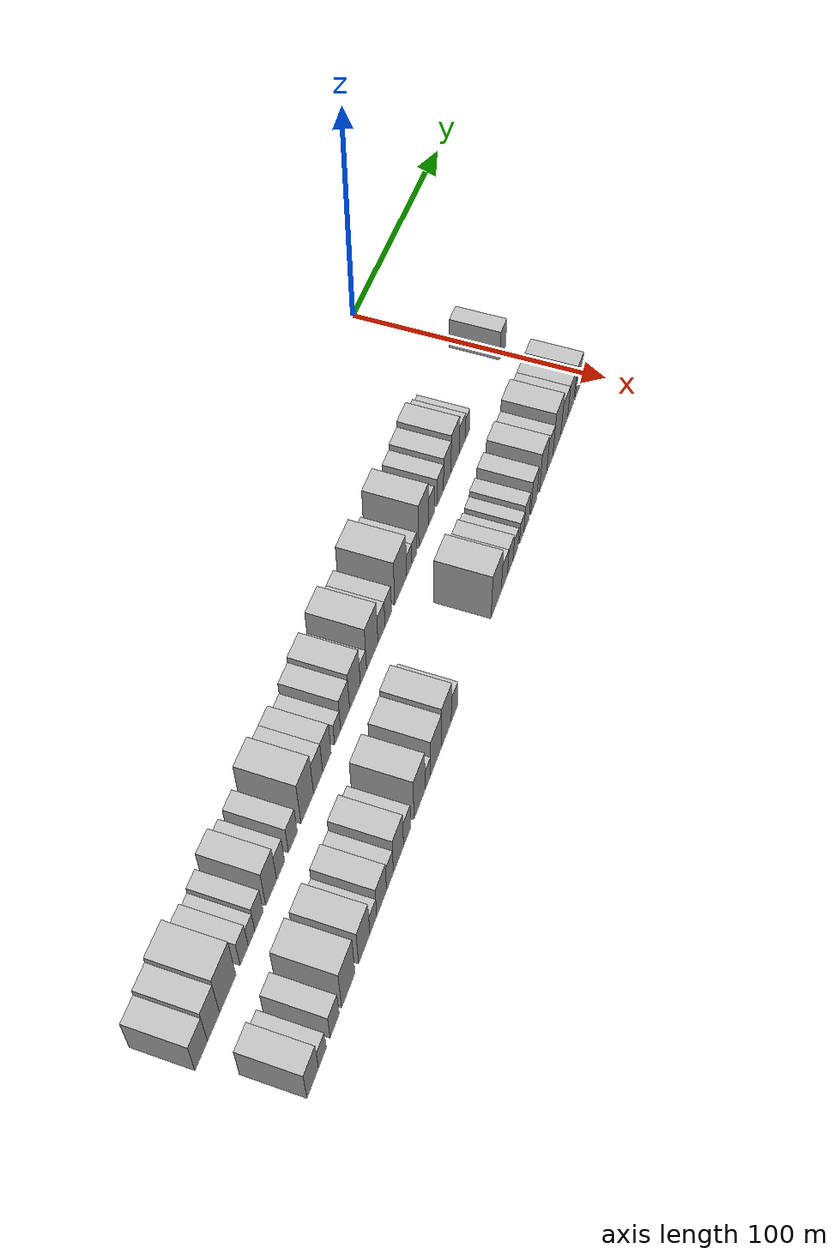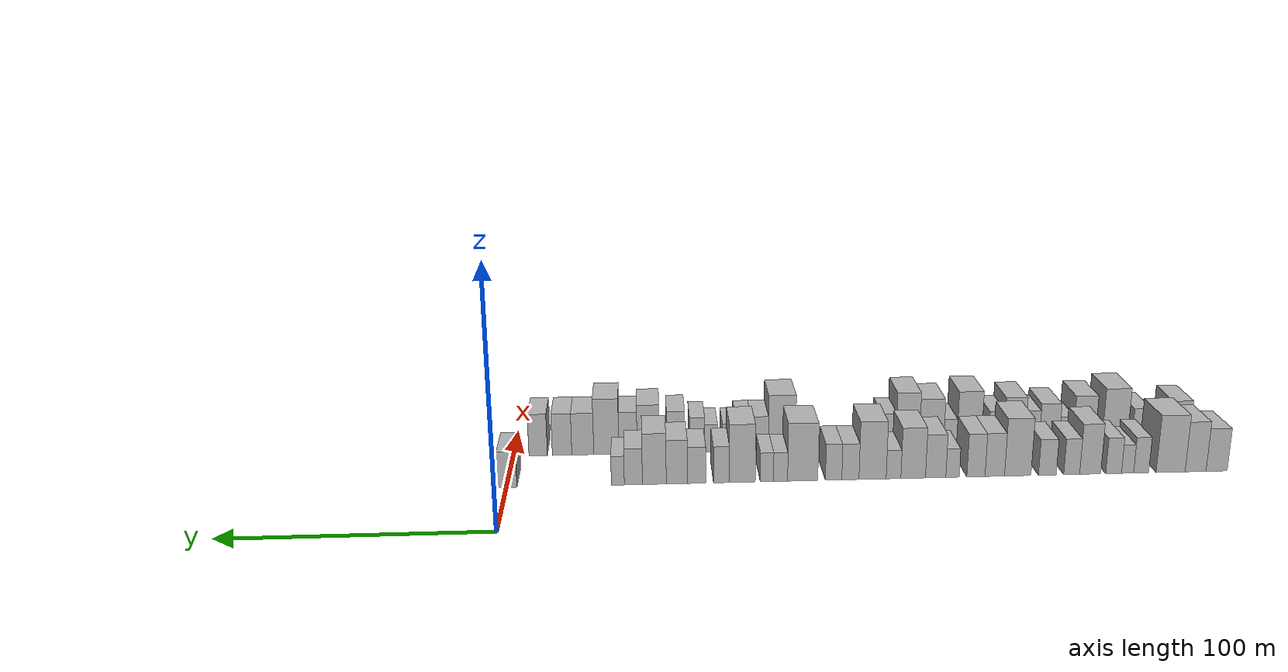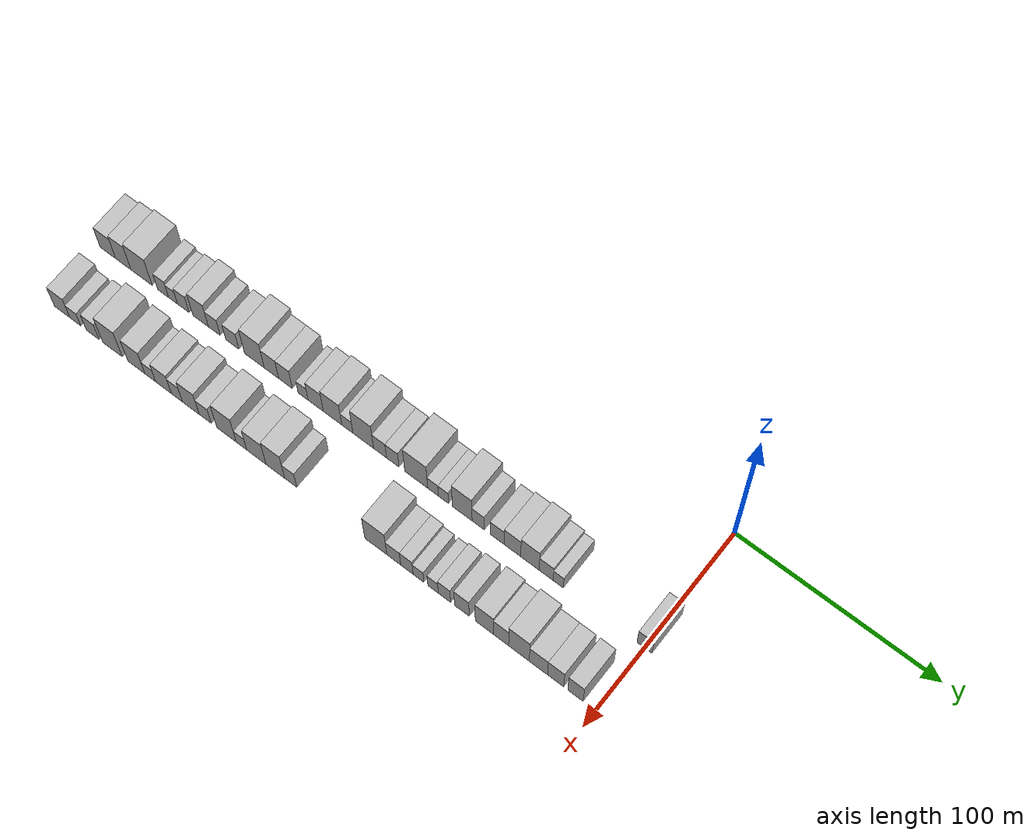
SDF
<sdf version="1.6">
 <world name="default">
  <model name="building_1">
   <static>1</static>
   <pose>50.0000 -279.7125 0 0.000000 0.000000 0.000000</pose>
   <link name="link">
    <pose>0 0 9.00 0 0 0</pose>
    <collision name="collision"><geometry><box><size>20.0000 8.5751 18.0000</size></box></geometry></collision>
    <visual name="visual">
     <cast_shadows>0</cast_shadows>
     <geometry><box><size>20.0000 8.5751 18.0000</size></box></geometry>
     <material>
      <script>
       <uri>model://HANNAS_wall/materials/scripts</uri>
       <uri>model://HANNAS_wall/materials/textures</uri>
       <name>vrc/HANNAS_wall</name>
      </script>
     </material>
    </visual>
   </link>
  </model>
  <model name="building_2">
   <static>1</static>
   <pose>50.0000 -271.1900 0 0.000000 0.000000 0.000000</pose>
   <link name="link">
    <pose>0 0 10.50 0 0 0</pose>
    <collision name="collision"><geometry><box><size>20.0000 8.4698 21.0000</size></box></geometry></collision>
    <visual name="visual">
     <cast_shadows>0</cast_shadows>
     <geometry><box><size>20.0000 8.4698 21.0000</size></box></geometry>
     <material>
      <script>
       <uri>model://HANNAS_wall/materials/scripts</uri>
       <uri>model://HANNAS_wall/materials/textures</uri>
       <name>vrc/HANNAS_wall</name>
      </script>
     </material>
    </visual>
   </link>
  </model>
  <model name="building_3">
   <static>1</static>
   <pose>50.0000 -261.0978 0 0.000000 0.000000 0.000000</pose>
   <link name="link">
    <pose>0 0 12.00 0 0 0</pose>
    <collision name="collision"><geometry><box><size>20.0000 11.7146 24.0000</size></box></geometry></collision>
    <visual name="visual">
     <cast_shadows>0</cast_shadows>
     <geometry><box><size>20.0000 11.7146 24.0000</size></box></geometry>
     <material>
      <script>
       <uri>model://HANNAS_wall/materials/scripts</uri>
       <uri>model://HANNAS_wall/materials/textures</uri>
       <name>vrc/HANNAS_wall</name>
      </script>
     </material>
    </visual>
   </link>
  </model>
  <model name="building_4">
   <static>1</static>
   <pose>50.0000 -249.2100 0 0.000000 0.000000 0.000000</pose>
   <link name="link">
    <pose>0 0 7.50 0 0 0</pose>
    <collision name="collision"><geometry><box><size>20.0000 6.0610 15.0000</size></box></geometry></collision>
    <visual name="visual">
     <cast_shadows>0</cast_shadows>
     <geometry><box><size>20.0000 6.0610 15.0000</size></box></geometry>
     <material>
      <script>
       <uri>model://HANNAS_wall/materials/scripts</uri>
       <uri>model://HANNAS_wall/materials/textures</uri>
       <name>vrc/HANNAS_wall</name>
      </script>
     </material>
    </visual>
   </link>
  </model>
  <model name="building_5">
   <static>1</static>
   <pose>50.0000 -243.7288 0 0.000000 0.000000 0.000000</pose>
   <link name="link">
    <pose>0 0 6.00 0 0 0</pose>
    <collision name="collision"><geometry><box><size>20.0000 4.9014 12.0000</size></box></geometry></collision>
    <visual name="visual">
     <cast_shadows>0</cast_shadows>
     <geometry><box><size>20.0000 4.9014 12.0000</size></box></geometry>
     <material>
      <script>
       <uri>model://HANNAS_wall/materials/scripts</uri>
       <uri>model://HANNAS_wall/materials/textures</uri>
       <name>vrc/HANNAS_wall</name>
      </script>
     </material>
    </visual>
   </link>
  </model>
  <model name="building_6">
   <static>1</static>
   <pose>50.0000 -238.1100 0 0.000000 0.000000 0.000000</pose>
   <link name="link">
    <pose>0 0 7.50 0 0 0</pose>
    <collision name="collision"><geometry><box><size>20.0000 6.3363 15.0000</size></box></geometry></collision>
    <visual name="visual">
     <cast_shadows>0</cast_shadows>
     <geometry><box><size>20.0000 6.3363 15.0000</size></box></geometry>
     <material>
      <script>
       <uri>model://HANNAS_wall/materials/scripts</uri>
       <uri>model://HANNAS_wall/materials/textures</uri>
       <name>vrc/HANNAS_wall</name>
      </script>
     </material>
    </visual>
   </link>
  </model>
  <model name="building_7">
   <static>1</static>
   <pose>50.0000 -228.7135 0 0.000000 0.000000 0.000000</pose>
   <link name="link">
    <pose>0 0 10.50 0 0 0</pose>
    <collision name="collision"><geometry><box><size>20.0000 8.4566 21.0000</size></box></geometry></collision>
    <visual name="visual">
     <cast_shadows>0</cast_shadows>
     <geometry><box><size>20.0000 8.4566 21.0000</size></box></geometry>
     <material>
      <script>
       <uri>model://HANNAS_wall/materials/scripts</uri>
       <uri>model://HANNAS_wall/materials/textures</uri>
       <name>vrc/HANNAS_wall</name>
      </script>
     </material>
    </visual>
   </link>
  </model>
  <model name="building_8">
   <static>1</static>
   <pose>50.0000 -221.2973 0 0.000000 0.000000 0.000000</pose>
   <link name="link">
    <pose>0 0 7.50 0 0 0</pose>
    <collision name="collision"><geometry><box><size>20.0000 6.3758 15.0000</size></box></geometry></collision>
    <visual name="visual">
     <cast_shadows>0</cast_shadows>
     <geometry><box><size>20.0000 6.3758 15.0000</size></box></geometry>
     <material>
      <script>
       <uri>model://HANNAS_wall/materials/scripts</uri>
       <uri>model://HANNAS_wall/materials/textures</uri>
       <name>vrc/HANNAS_wall</name>
      </script>
     </material>
    </visual>
   </link>
  </model>
  <model name="building_9">
   <static>1</static>
   <pose>50.0000 -211.5569 0 0.000000 0.000000 0.000000</pose>
   <link name="link">
    <pose>0 0 7.50 0 0 0</pose>
    <collision name="collision"><geometry><box><size>20.0000 7.1049 15.0000</size></box></geometry></collision>
    <visual name="visual">
     <cast_shadows>0</cast_shadows>
     <geometry><box><size>20.0000 7.1049 15.0000</size></box></geometry>
     <material>
      <script>
       <uri>model://HANNAS_wall/materials/scripts</uri>
       <uri>model://HANNAS_wall/materials/textures</uri>
       <name>vrc/HANNAS_wall</name>
      </script>
     </material>
    </visual>
   </link>
  </model>
  <model name="building_10">
   <static>1</static>
   <pose>50.0000 -199.7303 0 0.000000 0.000000 0.000000</pose>
   <link name="link">
    <pose>0 0 12.00 0 0 0</pose>
    <collision name="collision"><geometry><box><size>20.0000 10.5482 24.0000</size></box></geometry></collision>
    <visual name="visual">
     <cast_shadows>0</cast_shadows>
     <geometry><box><size>20.0000 10.5482 24.0000</size></box></geometry>
     <material>
      <script>
       <uri>model://HANNAS_wall/materials/scripts</uri>
       <uri>model://HANNAS_wall/materials/textures</uri>
       <name>vrc/HANNAS_wall</name>
      </script>
     </material>
    </visual>
   </link>
  </model>
  <model name="building_11">
   <static>1</static>
   <pose>50.0000 -190.5804 0 0.000000 0.000000 0.000000</pose>
   <link name="link">
    <pose>0 0 9.00 0 0 0</pose>
    <collision name="collision"><geometry><box><size>20.0000 7.7517 18.0000</size></box></geometry></collision>
    <visual name="visual">
     <cast_shadows>0</cast_shadows>
     <geometry><box><size>20.0000 7.7517 18.0000</size></box></geometry>
     <material>
      <script>
       <uri>model://HANNAS_wall/materials/scripts</uri>
       <uri>model://HANNAS_wall/materials/textures</uri>
       <name>vrc/HANNAS_wall</name>
      </script>
     </material>
    </visual>
   </link>
  </model>
  <model name="building_12">
   <static>1</static>
   <pose>50.0000 -183.0801 0 0.000000 0.000000 0.000000</pose>
   <link name="link">
    <pose>0 0 9.00 0 0 0</pose>
    <collision name="collision"><geometry><box><size>20.0000 7.2488 18.0000</size></box></geometry></collision>
    <visual name="visual">
     <cast_shadows>0</cast_shadows>
     <geometry><box><size>20.0000 7.2488 18.0000</size></box></geometry>
     <material>
      <script>
       <uri>model://HANNAS_wall/materials/scripts</uri>
       <uri>model://HANNAS_wall/materials/textures</uri>
       <name>vrc/HANNAS_wall</name>
      </script>
     </material>
    </visual>
   </link>
  </model>
  <model name="building_13">
   <static>1</static>
   <pose>50.0000 -173.7837 0 0.000000 0.000000 0.000000</pose>
   <link name="link">
    <pose>0 0 6.00 0 0 0</pose>
    <collision name="collision"><geometry><box><size>20.0000 5.3440 12.0000</size></box></geometry></collision>
    <visual name="visual">
     <cast_shadows>0</cast_shadows>
     <geometry><box><size>20.0000 5.3440 12.0000</size></box></geometry>
     <material>
      <script>
       <uri>model://HANNAS_wall/materials/scripts</uri>
       <uri>model://HANNAS_wall/materials/textures</uri>
       <name>vrc/HANNAS_wall</name>
      </script>
     </material>
    </visual>
   </link>
  </model>
  <model name="building_14">
   <static>1</static>
   <pose>50.0000 -167.0755 0 0.000000 0.000000 0.000000</pose>
   <link name="link">
    <pose>0 0 9.00 0 0 0</pose>
    <collision name="collision"><geometry><box><size>20.0000 8.0723 18.0000</size></box></geometry></collision>
    <visual name="visual">
     <cast_shadows>0</cast_shadows>
     <geometry><box><size>20.0000 8.0723 18.0000</size></box></geometry>
     <material>
      <script>
       <uri>model://HANNAS_wall/materials/scripts</uri>
       <uri>model://HANNAS_wall/materials/textures</uri>
       <name>vrc/HANNAS_wall</name>
      </script>
     </material>
    </visual>
   </link>
  </model>
  <model name="building_15">
   <static>1</static>
   <pose>50.0000 -158.1807 0 0.000000 0.000000 0.000000</pose>
   <link name="link">
    <pose>0 0 10.50 0 0 0</pose>
    <collision name="collision"><geometry><box><size>20.0000 9.7175 21.0000</size></box></geometry></collision>
    <visual name="visual">
     <cast_shadows>0</cast_shadows>
     <geometry><box><size>20.0000 9.7175 21.0000</size></box></geometry>
     <material>
      <script>
       <uri>model://HANNAS_wall/materials/scripts</uri>
       <uri>model://HANNAS_wall/materials/textures</uri>
       <name>vrc/HANNAS_wall</name>
      </script>
     </material>
    </visual>
   </link>
  </model>
  <model name="building_16">
   <static>1</static>
   <pose>50.0000 -150.4176 0 0.000000 0.000000 0.000000</pose>
   <link name="link">
    <pose>0 0 6.00 0 0 0</pose>
    <collision name="collision"><geometry><box><size>20.0000 5.8087 12.0000</size></box></geometry></collision>
    <visual name="visual">
     <cast_shadows>0</cast_shadows>
     <geometry><box><size>20.0000 5.8087 12.0000</size></box></geometry>
     <material>
      <script>
       <uri>model://HANNAS_wall/materials/scripts</uri>
       <uri>model://HANNAS_wall/materials/textures</uri>
       <name>vrc/HANNAS_wall</name>
      </script>
     </material>
    </visual>
   </link>
  </model>
  <model name="building_17">
   <static>1</static>
   <pose>50.0000 -142.1498 0 0.000000 0.000000 0.000000</pose>
   <link name="link">
    <pose>0 0 12.00 0 0 0</pose>
    <collision name="collision"><geometry><box><size>20.0000 10.7268 24.0000</size></box></geometry></collision>
    <visual name="visual">
     <cast_shadows>0</cast_shadows>
     <geometry><box><size>20.0000 10.7268 24.0000</size></box></geometry>
     <material>
      <script>
       <uri>model://HANNAS_wall/materials/scripts</uri>
       <uri>model://HANNAS_wall/materials/textures</uri>
       <name>vrc/HANNAS_wall</name>
      </script>
     </material>
    </visual>
   </link>
  </model>
  <model name="building_18">
   <static>1</static>
   <pose>50.0000 -133.4117 0 0.000000 0.000000 0.000000</pose>
   <link name="link">
    <pose>0 0 7.50 0 0 0</pose>
    <collision name="collision"><geometry><box><size>20.0000 6.7494 15.0000</size></box></geometry></collision>
    <visual name="visual">
     <cast_shadows>0</cast_shadows>
     <geometry><box><size>20.0000 6.7494 15.0000</size></box></geometry>
     <material>
      <script>
       <uri>model://HANNAS_wall/materials/scripts</uri>
       <uri>model://HANNAS_wall/materials/textures</uri>
       <name>vrc/HANNAS_wall</name>
      </script>
     </material>
    </visual>
   </link>
  </model>
  <model name="building_19">
   <static>1</static>
   <pose>50.0000 -126.8120 0 0.000000 0.000000 0.000000</pose>
   <link name="link">
    <pose>0 0 7.50 0 0 0</pose>
    <collision name="collision"><geometry><box><size>20.0000 6.4500 15.0000</size></box></geometry></collision>
    <visual name="visual">
     <cast_shadows>0</cast_shadows>
     <geometry><box><size>20.0000 6.4500 15.0000</size></box></geometry>
     <material>
      <script>
       <uri>model://HANNAS_wall/materials/scripts</uri>
       <uri>model://HANNAS_wall/materials/textures</uri>
       <name>vrc/HANNAS_wall</name>
      </script>
     </material>
    </visual>
   </link>
  </model>
  <model name="building_20">
   <static>1</static>
   <pose>50.0000 -114.6766 0 0.000000 0.000000 0.000000</pose>
   <link name="link">
    <pose>0 0 12.00 0 0 0</pose>
    <collision name="collision"><geometry><box><size>20.0000 11.8208 24.0000</size></box></geometry></collision>
    <visual name="visual">
     <cast_shadows>0</cast_shadows>
     <geometry><box><size>20.0000 11.8208 24.0000</size></box></geometry>
     <material>
      <script>
       <uri>model://HANNAS_wall/materials/scripts</uri>
       <uri>model://HANNAS_wall/materials/textures</uri>
       <name>vrc/HANNAS_wall</name>
      </script>
     </material>
    </visual>
   </link>
  </model>
  <model name="building_21">
   <static>1</static>
   <pose>50.0000 -106.0119 0 0.000000 0.000000 0.000000</pose>
   <link name="link">
    <pose>0 0 6.00 0 0 0</pose>
    <collision name="collision"><geometry><box><size>20.0000 5.5086 12.0000</size></box></geometry></collision>
    <visual name="visual">
     <cast_shadows>0</cast_shadows>
     <geometry><box><size>20.0000 5.5086 12.0000</size></box></geometry>
     <material>
      <script>
       <uri>model://HANNAS_wall/materials/scripts</uri>
       <uri>model://HANNAS_wall/materials/textures</uri>
       <name>vrc/HANNAS_wall</name>
      </script>
     </material>
    </visual>
   </link>
  </model>
  <model name="building_22">
   <static>1</static>
   <pose>50.0000 -100.6855 0 0.000000 0.000000 0.000000</pose>
   <link name="link">
    <pose>0 0 6.00 0 0 0</pose>
    <collision name="collision"><geometry><box><size>20.0000 5.1442 12.0000</size></box></geometry></collision>
    <visual name="visual">
     <cast_shadows>0</cast_shadows>
     <geometry><box><size>20.0000 5.1442 12.0000</size></box></geometry>
     <material>
      <script>
       <uri>model://HANNAS_wall/materials/scripts</uri>
       <uri>model://HANNAS_wall/materials/textures</uri>
       <name>vrc/HANNAS_wall</name>
      </script>
     </material>
    </visual>
   </link>
  </model>
  <model name="building_23">
   <static>1</static>
   <pose>50.0000 -91.1002 0 0.000000 0.000000 0.000000</pose>
   <link name="link">
    <pose>0 0 12.00 0 0 0</pose>
    <collision name="collision"><geometry><box><size>20.0000 10.0264 24.0000</size></box></geometry></collision>
    <visual name="visual">
     <cast_shadows>0</cast_shadows>
     <geometry><box><size>20.0000 10.0264 24.0000</size></box></geometry>
     <material>
      <script>
       <uri>model://HANNAS_wall/materials/scripts</uri>
       <uri>model://HANNAS_wall/materials/textures</uri>
       <name>vrc/HANNAS_wall</name>
      </script>
     </material>
    </visual>
   </link>
  </model>
  <model name="building_24">
   <static>1</static>
   <pose>50.0000 -82.9708 0 0.000000 0.000000 0.000000</pose>
   <link name="link">
    <pose>0 0 7.50 0 0 0</pose>
    <collision name="collision"><geometry><box><size>20.0000 6.2323 15.0000</size></box></geometry></collision>
    <visual name="visual">
     <cast_shadows>0</cast_shadows>
     <geometry><box><size>20.0000 6.2323 15.0000</size></box></geometry>
     <material>
      <script>
       <uri>model://HANNAS_wall/materials/scripts</uri>
       <uri>model://HANNAS_wall/materials/textures</uri>
       <name>vrc/HANNAS_wall</name>
      </script>
     </material>
    </visual>
   </link>
  </model>
  <model name="building_25">
   <static>1</static>
   <pose>50.0000 -73.3102 0 0.000000 0.000000 0.000000</pose>
   <link name="link">
    <pose>0 0 7.50 0 0 0</pose>
    <collision name="collision"><geometry><box><size>20.0000 7.0889 15.0000</size></box></geometry></collision>
    <visual name="visual">
     <cast_shadows>0</cast_shadows>
     <geometry><box><size>20.0000 7.0889 15.0000</size></box></geometry>
     <material>
      <script>
       <uri>model://HANNAS_wall/materials/scripts</uri>
       <uri>model://HANNAS_wall/materials/textures</uri>
       <name>vrc/HANNAS_wall</name>
      </script>
     </material>
    </visual>
   </link>
  </model>
  <model name="building_26">
   <static>1</static>
   <pose>50.0000 -65.6326 0 0.000000 0.000000 0.000000</pose>
   <link name="link">
    <pose>0 0 9.00 0 0 0</pose>
    <collision name="collision"><geometry><box><size>20.0000 8.2663 18.0000</size></box></geometry></collision>
    <visual name="visual">
     <cast_shadows>0</cast_shadows>
     <geometry><box><size>20.0000 8.2663 18.0000</size></box></geometry>
     <material>
      <script>
       <uri>model://HANNAS_wall/materials/scripts</uri>
       <uri>model://HANNAS_wall/materials/textures</uri>
       <name>vrc/HANNAS_wall</name>
      </script>
     </material>
    </visual>
   </link>
  </model>
  <model name="building_27">
   <static>1</static>
   <pose>50.0000 -56.8797 0 0.000000 0.000000 0.000000</pose>
   <link name="link">
    <pose>0 0 10.50 0 0 0</pose>
    <collision name="collision"><geometry><box><size>20.0000 9.2396 21.0000</size></box></geometry></collision>
    <visual name="visual">
     <cast_shadows>0</cast_shadows>
     <geometry><box><size>20.0000 9.2396 21.0000</size></box></geometry>
     <material>
      <script>
       <uri>model://HANNAS_wall/materials/scripts</uri>
       <uri>model://HANNAS_wall/materials/textures</uri>
       <name>vrc/HANNAS_wall</name>
      </script>
     </material>
    </visual>
   </link>
  </model>
  <model name="building_28">
   <static>1</static>
   <pose>50.0000 -48.7602 0 0.000000 0.000000 0.000000</pose>
   <link name="link">
    <pose>0 0 7.50 0 0 0</pose>
    <collision name="collision"><geometry><box><size>20.0000 6.9993 15.0000</size></box></geometry></collision>
    <visual name="visual">
     <cast_shadows>0</cast_shadows>
     <geometry><box><size>20.0000 6.9993 15.0000</size></box></geometry>
     <material>
      <script>
       <uri>model://HANNAS_wall/materials/scripts</uri>
       <uri>model://HANNAS_wall/materials/textures</uri>
       <name>vrc/HANNAS_wall</name>
      </script>
     </material>
    </visual>
   </link>
  </model>
  <model name="building_29">
   <static>1</static>
   <pose>50.0000 -42.7589 0 0.000000 0.000000 0.000000</pose>
   <link name="link">
    <pose>0 0 6.00 0 0 0</pose>
    <collision name="collision"><geometry><box><size>20.0000 5.0032 12.0000</size></box></geometry></collision>
    <visual name="visual">
     <cast_shadows>0</cast_shadows>
     <geometry><box><size>20.0000 5.0032 12.0000</size></box></geometry>
     <material>
      <script>
       <uri>model://HANNAS_wall/materials/scripts</uri>
       <uri>model://HANNAS_wall/materials/textures</uri>
       <name>vrc/HANNAS_wall</name>
      </script>
     </material>
    </visual>
   </link>
  </model>
  <model name="building_30">
   <static>1</static>
   <pose>50.0000 -0.2794 0 0.000000 0.000000 0.000000</pose>
   <link name="link">
    <pose>0 0 7.50 0 0 0</pose>
    <collision name="collision"><geometry><box><size>20.0000 7.3186 15.0000</size></box></geometry></collision>
    <visual name="visual">
     <cast_shadows>0</cast_shadows>
     <geometry><box><size>20.0000 7.3186 15.0000</size></box></geometry>
     <material>
      <script>
       <uri>model://HANNAS_wall/materials/scripts</uri>
       <uri>model://HANNAS_wall/materials/textures</uri>
       <name>vrc/HANNAS_wall</name>
      </script>
     </material>
    </visual>
   </link>
  </model>
  <model name="building_57">
   <static>1</static>
   <pose>82.0000 -276.6978 0 0.000000 0.000000 0.000000</pose>
   <link name="link">
    <pose>0 0 9.00 0 0 0</pose>
    <collision name="collision"><geometry><box><size>20.0000 8.6043 18.0000</size></box></geometry></collision>
    <visual name="visual">
     <cast_shadows>0</cast_shadows>
     <geometry><box><size>20.0000 8.6043 18.0000</size></box></geometry>
     <material>
      <script>
       <uri>model://HANNAS_wall/materials/scripts</uri>
       <uri>model://HANNAS_wall/materials/textures</uri>
       <name>vrc/HANNAS_wall</name>
      </script>
     </material>
    </visual>
   </link>
  </model>
  <model name="building_58">
   <static>1</static>
   <pose>82.0000 -269.4161 0 0.000000 0.000000 0.000000</pose>
   <link name="link">
    <pose>0 0 6.00 0 0 0</pose>
    <collision name="collision"><geometry><box><size>20.0000 5.9592 12.0000</size></box></geometry></collision>
    <visual name="visual">
     <cast_shadows>0</cast_shadows>
     <geometry><box><size>20.0000 5.9592 12.0000</size></box></geometry>
     <material>
      <script>
       <uri>model://HANNAS_wall/materials/scripts</uri>
       <uri>model://HANNAS_wall/materials/textures</uri>
       <name>vrc/HANNAS_wall</name>
      </script>
     </material>
    </visual>
   </link>
  </model>
  <model name="building_59">
   <static>1</static>
   <pose>82.0000 -259.9107 0 0.000000 0.000000 0.000000</pose>
   <link name="link">
    <pose>0 0 7.50 0 0 0</pose>
    <collision name="collision"><geometry><box><size>20.0000 7.0517 15.0000</size></box></geometry></collision>
    <visual name="visual">
     <cast_shadows>0</cast_shadows>
     <geometry><box><size>20.0000 7.0517 15.0000</size></box></geometry>
     <material>
      <script>
       <uri>model://HANNAS_wall/materials/scripts</uri>
       <uri>model://HANNAS_wall/materials/textures</uri>
       <name>vrc/HANNAS_wall</name>
      </script>
     </material>
    </visual>
   </link>
  </model>
  <model name="building_60">
   <static>1</static>
   <pose>82.0000 -249.0382 0 0.000000 0.000000 0.000000</pose>
   <link name="link">
    <pose>0 0 12.00 0 0 0</pose>
    <collision name="collision"><geometry><box><size>20.0000 10.6934 24.0000</size></box></geometry></collision>
    <visual name="visual">
     <cast_shadows>0</cast_shadows>
     <geometry><box><size>20.0000 10.6934 24.0000</size></box></geometry>
     <material>
      <script>
       <uri>model://HANNAS_wall/materials/scripts</uri>
       <uri>model://HANNAS_wall/materials/textures</uri>
       <name>vrc/HANNAS_wall</name>
      </script>
     </material>
    </visual>
   </link>
  </model>
  <model name="building_61">
   <static>1</static>
   <pose>82.0000 -236.0178 0 0.000000 0.000000 0.000000</pose>
   <link name="link">
    <pose>0 0 10.50 0 0 0</pose>
    <collision name="collision"><geometry><box><size>20.0000 9.3474 21.0000</size></box></geometry></collision>
    <visual name="visual">
     <cast_shadows>0</cast_shadows>
     <geometry><box><size>20.0000 9.3474 21.0000</size></box></geometry>
     <material>
      <script>
       <uri>model://HANNAS_wall/materials/scripts</uri>
       <uri>model://HANNAS_wall/materials/textures</uri>
       <name>vrc/HANNAS_wall</name>
      </script>
     </material>
    </visual>
   </link>
  </model>
  <model name="building_62">
   <static>1</static>
   <pose>82.0000 -228.4459 0 0.000000 0.000000 0.000000</pose>
   <link name="link">
    <pose>0 0 6.00 0 0 0</pose>
    <collision name="collision"><geometry><box><size>20.0000 5.7963 12.0000</size></box></geometry></collision>
    <visual name="visual">
     <cast_shadows>0</cast_shadows>
     <geometry><box><size>20.0000 5.7963 12.0000</size></box></geometry>
     <material>
      <script>
       <uri>model://HANNAS_wall/materials/scripts</uri>
       <uri>model://HANNAS_wall/materials/textures</uri>
       <name>vrc/HANNAS_wall</name>
      </script>
     </material>
    </visual>
   </link>
  </model>
  <model name="building_63">
   <static>1</static>
   <pose>82.0000 -221.3331 0 0.000000 0.000000 0.000000</pose>
   <link name="link">
    <pose>0 0 9.00 0 0 0</pose>
    <collision name="collision"><geometry><box><size>20.0000 8.4293 18.0000</size></box></geometry></collision>
    <visual name="visual">
     <cast_shadows>0</cast_shadows>
     <geometry><box><size>20.0000 8.4293 18.0000</size></box></geometry>
     <material>
      <script>
       <uri>model://HANNAS_wall/materials/scripts</uri>
       <uri>model://HANNAS_wall/materials/textures</uri>
       <name>vrc/HANNAS_wall</name>
      </script>
     </material>
    </visual>
   </link>
  </model>
  <model name="building_64">
   <static>1</static>
   <pose>82.0000 -214.1167 0 0.000000 0.000000 0.000000</pose>
   <link name="link">
    <pose>0 0 7.50 0 0 0</pose>
    <collision name="collision"><geometry><box><size>20.0000 6.0035 15.0000</size></box></geometry></collision>
    <visual name="visual">
     <cast_shadows>0</cast_shadows>
     <geometry><box><size>20.0000 6.0035 15.0000</size></box></geometry>
     <material>
      <script>
       <uri>model://HANNAS_wall/materials/scripts</uri>
       <uri>model://HANNAS_wall/materials/textures</uri>
       <name>vrc/HANNAS_wall</name>
      </script>
     </material>
    </visual>
   </link>
  </model>
  <model name="building_65">
   <static>1</static>
   <pose>82.0000 -206.6123 0 0.000000 0.000000 0.000000</pose>
   <link name="link">
    <pose>0 0 10.50 0 0 0</pose>
    <collision name="collision"><geometry><box><size>20.0000 9.0052 21.0000</size></box></geometry></collision>
    <visual name="visual">
     <cast_shadows>0</cast_shadows>
     <geometry><box><size>20.0000 9.0052 21.0000</size></box></geometry>
     <material>
      <script>
       <uri>model://HANNAS_wall/materials/scripts</uri>
       <uri>model://HANNAS_wall/materials/textures</uri>
       <name>vrc/HANNAS_wall</name>
      </script>
     </material>
    </visual>
   </link>
  </model>
  <model name="building_66">
   <static>1</static>
   <pose>82.0000 -198.9007 0 0.000000 0.000000 0.000000</pose>
   <link name="link">
    <pose>0 0 7.50 0 0 0</pose>
    <collision name="collision"><geometry><box><size>20.0000 6.4182 15.0000</size></box></geometry></collision>
    <visual name="visual">
     <cast_shadows>0</cast_shadows>
     <geometry><box><size>20.0000 6.4182 15.0000</size></box></geometry>
     <material>
      <script>
       <uri>model://HANNAS_wall/materials/scripts</uri>
       <uri>model://HANNAS_wall/materials/textures</uri>
       <name>vrc/HANNAS_wall</name>
      </script>
     </material>
    </visual>
   </link>
  </model>
  <model name="building_67">
   <static>1</static>
   <pose>82.0000 -187.5604 0 0.000000 0.000000 0.000000</pose>
   <link name="link">
    <pose>0 0 12.00 0 0 0</pose>
    <collision name="collision"><geometry><box><size>20.0000 10.2624 24.0000</size></box></geometry></collision>
    <visual name="visual">
     <cast_shadows>0</cast_shadows>
     <geometry><box><size>20.0000 10.2624 24.0000</size></box></geometry>
     <material>
      <script>
       <uri>model://HANNAS_wall/materials/scripts</uri>
       <uri>model://HANNAS_wall/materials/textures</uri>
       <name>vrc/HANNAS_wall</name>
      </script>
     </material>
    </visual>
   </link>
  </model>
  <model name="building_68">
   <static>1</static>
   <pose>82.0000 -179.6830 0 0.000000 0.000000 0.000000</pose>
   <link name="link">
    <pose>0 0 6.00 0 0 0</pose>
    <collision name="collision"><geometry><box><size>20.0000 5.4923 12.0000</size></box></geometry></collision>
    <visual name="visual">
     <cast_shadows>0</cast_shadows>
     <geometry><box><size>20.0000 5.4923 12.0000</size></box></geometry>
     <material>
      <script>
       <uri>model://HANNAS_wall/materials/scripts</uri>
       <uri>model://HANNAS_wall/materials/textures</uri>
       <name>vrc/HANNAS_wall</name>
      </script>
     </material>
    </visual>
   </link>
  </model>
  <model name="building_69">
   <static>1</static>
   <pose>82.0000 -171.8364 0 0.000000 0.000000 0.000000</pose>
   <link name="link">
    <pose>0 0 10.50 0 0 0</pose>
    <collision name="collision"><geometry><box><size>20.0000 10.2010 21.0000</size></box></geometry></collision>
    <visual name="visual">
     <cast_shadows>0</cast_shadows>
     <geometry><box><size>20.0000 10.2010 21.0000</size></box></geometry>
     <material>
      <script>
       <uri>model://HANNAS_wall/materials/scripts</uri>
       <uri>model://HANNAS_wall/materials/textures</uri>
       <name>vrc/HANNAS_wall</name>
      </script>
     </material>
    </visual>
   </link>
  </model>
  <model name="building_70">
   <static>1</static>
   <pose>82.0000 -161.8388 0 0.000000 0.000000 0.000000</pose>
   <link name="link">
    <pose>0 0 12.00 0 0 0</pose>
    <collision name="collision"><geometry><box><size>20.0000 9.7941 24.0000</size></box></geometry></collision>
    <visual name="visual">
     <cast_shadows>0</cast_shadows>
     <geometry><box><size>20.0000 9.7941 24.0000</size></box></geometry>
     <material>
      <script>
       <uri>model://HANNAS_wall/materials/scripts</uri>
       <uri>model://HANNAS_wall/materials/textures</uri>
       <name>vrc/HANNAS_wall</name>
      </script>
     </material>
    </visual>
   </link>
  </model>
  <model name="building_71">
   <static>1</static>
   <pose>82.0000 -153.7843 0 0.000000 0.000000 0.000000</pose>
   <link name="link">
    <pose>0 0 7.50 0 0 0</pose>
    <collision name="collision"><geometry><box><size>20.0000 6.3149 15.0000</size></box></geometry></collision>
    <visual name="visual">
     <cast_shadows>0</cast_shadows>
     <geometry><box><size>20.0000 6.3149 15.0000</size></box></geometry>
     <material>
      <script>
       <uri>model://HANNAS_wall/materials/scripts</uri>
       <uri>model://HANNAS_wall/materials/textures</uri>
       <name>vrc/HANNAS_wall</name>
      </script>
     </material>
    </visual>
   </link>
  </model>
  <model name="building_72">
   <static>1</static>
   <pose>82.0000 -109.7292 0 0.000000 0.000000 0.000000</pose>
   <link name="link">
    <pose>0 0 12.00 0 0 0</pose>
    <collision name="collision"><geometry><box><size>20.0000 11.2651 24.0000</size></box></geometry></collision>
    <visual name="visual">
     <cast_shadows>0</cast_shadows>
     <geometry><box><size>20.0000 11.2651 24.0000</size></box></geometry>
     <material>
      <script>
       <uri>model://HANNAS_wall/materials/scripts</uri>
       <uri>model://HANNAS_wall/materials/textures</uri>
       <name>vrc/HANNAS_wall</name>
      </script>
     </material>
    </visual>
   </link>
  </model>
  <model name="building_73">
   <static>1</static>
   <pose>82.0000 -100.5421 0 0.000000 0.000000 0.000000</pose>
   <link name="link">
    <pose>0 0 7.50 0 0 0</pose>
    <collision name="collision"><geometry><box><size>20.0000 7.1089 15.0000</size></box></geometry></collision>
    <visual name="visual">
     <cast_shadows>0</cast_shadows>
     <geometry><box><size>20.0000 7.1089 15.0000</size></box></geometry>
     <material>
      <script>
       <uri>model://HANNAS_wall/materials/scripts</uri>
       <uri>model://HANNAS_wall/materials/textures</uri>
       <name>vrc/HANNAS_wall</name>
      </script>
     </material>
    </visual>
   </link>
  </model>
  <model name="building_74">
   <static>1</static>
   <pose>82.0000 -93.8319 0 0.000000 0.000000 0.000000</pose>
   <link name="link">
    <pose>0 0 7.50 0 0 0</pose>
    <collision name="collision"><geometry><box><size>20.0000 6.3115 15.0000</size></box></geometry></collision>
    <visual name="visual">
     <cast_shadows>0</cast_shadows>
     <geometry><box><size>20.0000 6.3115 15.0000</size></box></geometry>
     <material>
      <script>
       <uri>model://HANNAS_wall/materials/scripts</uri>
       <uri>model://HANNAS_wall/materials/textures</uri>
       <name>vrc/HANNAS_wall</name>
      </script>
     </material>
    </visual>
   </link>
  </model>
  <model name="building_75">
   <static>1</static>
   <pose>82.0000 -87.9706 0 0.000000 0.000000 0.000000</pose>
   <link name="link">
    <pose>0 0 6.00 0 0 0</pose>
    <collision name="collision"><geometry><box><size>20.0000 5.4111 12.0000</size></box></geometry></collision>
    <visual name="visual">
     <cast_shadows>0</cast_shadows>
     <geometry><box><size>20.0000 5.4111 12.0000</size></box></geometry>
     <material>
      <script>
       <uri>model://HANNAS_wall/materials/scripts</uri>
       <uri>model://HANNAS_wall/materials/textures</uri>
       <name>vrc/HANNAS_wall</name>
      </script>
     </material>
    </visual>
   </link>
  </model>
  <model name="building_76">
   <static>1</static>
   <pose>82.0000 -80.6211 0 0.000000 0.000000 0.000000</pose>
   <link name="link">
    <pose>0 0 6.00 0 0 0</pose>
    <collision name="collision"><geometry><box><size>20.0000 5.2880 12.0000</size></box></geometry></collision>
    <visual name="visual">
     <cast_shadows>0</cast_shadows>
     <geometry><box><size>20.0000 5.2880 12.0000</size></box></geometry>
     <material>
      <script>
       <uri>model://HANNAS_wall/materials/scripts</uri>
       <uri>model://HANNAS_wall/materials/textures</uri>
       <name>vrc/HANNAS_wall</name>
      </script>
     </material>
    </visual>
   </link>
  </model>
  <model name="building_77">
   <static>1</static>
   <pose>82.0000 -74.8862 0 0.000000 0.000000 0.000000</pose>
   <link name="link">
    <pose>0 0 7.50 0 0 0</pose>
    <collision name="collision"><geometry><box><size>20.0000 6.1816 15.0000</size></box></geometry></collision>
    <visual name="visual">
     <cast_shadows>0</cast_shadows>
     <geometry><box><size>20.0000 6.1816 15.0000</size></box></geometry>
     <material>
      <script>
       <uri>model://HANNAS_wall/materials/scripts</uri>
       <uri>model://HANNAS_wall/materials/textures</uri>
       <name>vrc/HANNAS_wall</name>
      </script>
     </material>
    </visual>
   </link>
  </model>
  <model name="building_78">
   <static>1</static>
   <pose>82.0000 -66.1089 0 0.000000 0.000000 0.000000</pose>
   <link name="link">
    <pose>0 0 9.00 0 0 0</pose>
    <collision name="collision"><geometry><box><size>20.0000 7.3730 18.0000</size></box></geometry></collision>
    <visual name="visual">
     <cast_shadows>0</cast_shadows>
     <geometry><box><size>20.0000 7.3730 18.0000</size></box></geometry>
     <material>
      <script>
       <uri>model://HANNAS_wall/materials/scripts</uri>
       <uri>model://HANNAS_wall/materials/textures</uri>
       <name>vrc/HANNAS_wall</name>
      </script>
     </material>
    </visual>
   </link>
  </model>
  <model name="building_79">
   <static>1</static>
   <pose>82.0000 -54.8564 0 0.000000 0.000000 0.000000</pose>
   <link name="link">
    <pose>0 0 10.50 0 0 0</pose>
    <collision name="collision"><geometry><box><size>20.0000 9.1320 21.0000</size></box></geometry></collision>
    <visual name="visual">
     <cast_shadows>0</cast_shadows>
     <geometry><box><size>20.0000 9.1320 21.0000</size></box></geometry>
     <material>
      <script>
       <uri>model://HANNAS_wall/materials/scripts</uri>
       <uri>model://HANNAS_wall/materials/textures</uri>
       <name>vrc/HANNAS_wall</name>
      </script>
     </material>
    </visual>
   </link>
  </model>
  <model name="building_80">
   <static>1</static>
   <pose>82.0000 -46.5718 0 0.000000 0.000000 0.000000</pose>
   <link name="link">
    <pose>0 0 9.00 0 0 0</pose>
    <collision name="collision"><geometry><box><size>20.0000 7.4371 18.0000</size></box></geometry></collision>
    <visual name="visual">
     <cast_shadows>0</cast_shadows>
     <geometry><box><size>20.0000 7.4371 18.0000</size></box></geometry>
     <material>
      <script>
       <uri>model://HANNAS_wall/materials/scripts</uri>
       <uri>model://HANNAS_wall/materials/textures</uri>
       <name>vrc/HANNAS_wall</name>
      </script>
     </material>
    </visual>
   </link>
  </model>
  <model name="building_81">
   <static>1</static>
   <pose>82.0000 -37.7172 0 0.000000 0.000000 0.000000</pose>
   <link name="link">
    <pose>0 0 12.00 0 0 0</pose>
    <collision name="collision"><geometry><box><size>20.0000 10.2720 24.0000</size></box></geometry></collision>
    <visual name="visual">
     <cast_shadows>0</cast_shadows>
     <geometry><box><size>20.0000 10.2720 24.0000</size></box></geometry>
     <material>
      <script>
       <uri>model://HANNAS_wall/materials/scripts</uri>
       <uri>model://HANNAS_wall/materials/textures</uri>
       <name>vrc/HANNAS_wall</name>
      </script>
     </material>
    </visual>
   </link>
  </model>
  <model name="building_82">
   <static>1</static>
   <pose>82.0000 -28.1083 0 0.000000 0.000000 0.000000</pose>
   <link name="link">
    <pose>0 0 9.00 0 0 0</pose>
    <collision name="collision"><geometry><box><size>20.0000 8.9458 18.0000</size></box></geometry></collision>
    <visual name="visual">
     <cast_shadows>0</cast_shadows>
     <geometry><box><size>20.0000 8.9458 18.0000</size></box></geometry>
     <material>
      <script>
       <uri>model://HANNAS_wall/materials/scripts</uri>
       <uri>model://HANNAS_wall/materials/textures</uri>
       <name>vrc/HANNAS_wall</name>
      </script>
     </material>
    </visual>
   </link>
  </model>
  <model name="building_83">
   <static>1</static>
   <pose>82.0000 -19.6749 0 0.000000 0.000000 0.000000</pose>
   <link name="link">
    <pose>0 0 9.00 0 0 0</pose>
    <collision name="collision"><geometry><box><size>20.0000 7.9210 18.0000</size></box></geometry></collision>
    <visual name="visual">
     <cast_shadows>0</cast_shadows>
     <geometry><box><size>20.0000 7.9210 18.0000</size></box></geometry>
     <material>
      <script>
       <uri>model://HANNAS_wall/materials/scripts</uri>
       <uri>model://HANNAS_wall/materials/textures</uri>
       <name>vrc/HANNAS_wall</name>
      </script>
     </material>
    </visual>
   </link>
  </model>
  <model name="building_84">
   <static>1</static>
   <pose>82.0000 -9.9742 0 0.000000 0.000000 0.000000</pose>
   <link name="link">
    <pose>0 0 9.00 0 0 0</pose>
    <collision name="collision"><geometry><box><size>20.0000 7.4805 18.0000</size></box></geometry></collision>
    <visual name="visual">
     <cast_shadows>0</cast_shadows>
     <geometry><box><size>20.0000 7.4805 18.0000</size></box></geometry>
     <material>
      <script>
       <uri>model://HANNAS_wall/materials/scripts</uri>
       <uri>model://HANNAS_wall/materials/textures</uri>
       <name>vrc/HANNAS_wall</name>
      </script>
     </material>
    </visual>
   </link>
  </model>
 </world>
</sdf>
